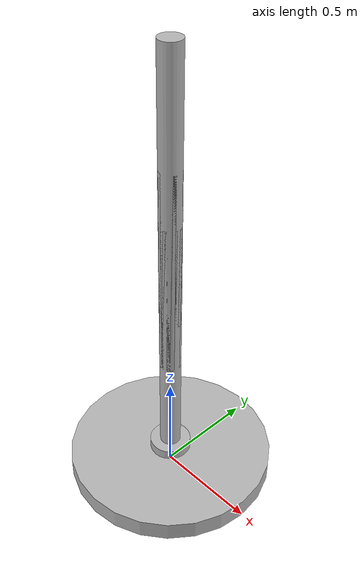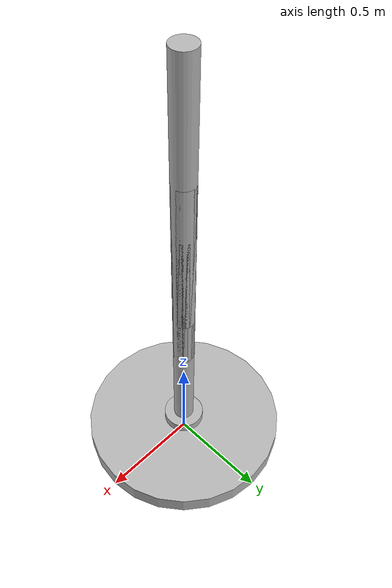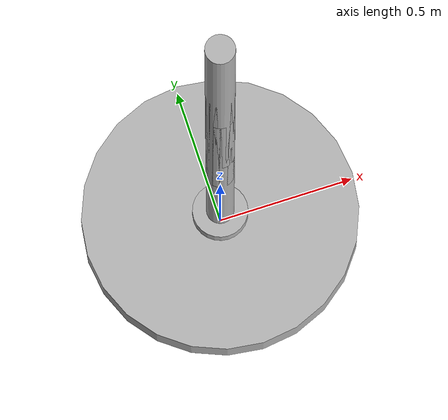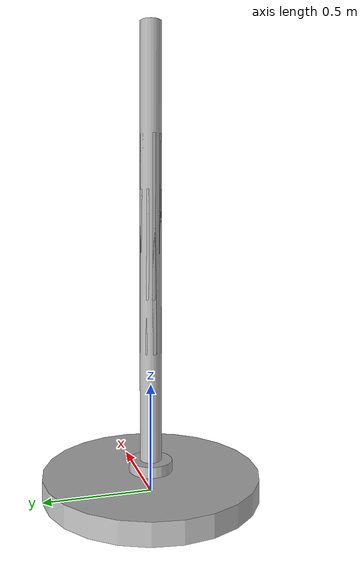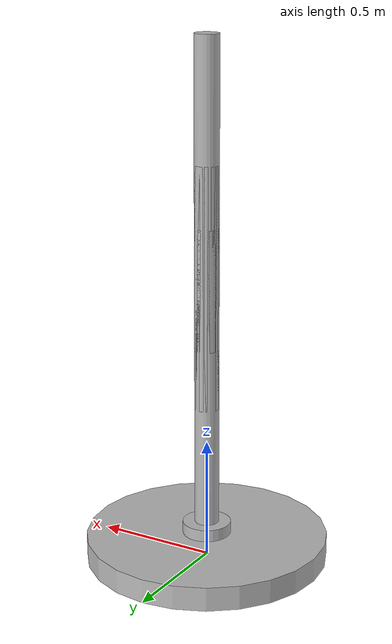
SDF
<?xml version='1.0'?>
<sdf version='1.4'>
  <model name="robotarm">
  <static>true</static>
   <link name='base'>
            <pose>0 0 0.05 0 0 0</pose>

            <collision name='collision'>
              <geometry>
                <cylinder>
                <radius>.5</radius>
                <length>.1</length>
              </cylinder>
              </geometry>
            </collision>

            <visual name='visual'>
              <geometry>
                <cylinder>
                <radius>.5</radius>
                <length>.1</length>
              </cylinder>
              </geometry>
            </visual>
          </link>

        <link name='arm1'>
            <pose>0 0 0.125 0 0 0</pose>

            <collision name='collision'>
              <geometry>
               <cylinder>
                <radius>.1</radius>
                <length>.05</length>
              </cylinder>
              </geometry>
            </collision>

            <visual name='visual'>
              <geometry>
                <cylinder>
                <radius>.1</radius>
                <length>.05</length>
              </cylinder>
              </geometry>
            </visual>
          </link>
          <link name='arm2'>
            <pose>0 0 1.15 0 0 0</pose>

            <collision name='collision'>
              <geometry>
               <cylinder>
                <radius>0.05</radius>
                <length>2</length>
              </cylinder>
              </geometry>
            </collision>

            <visual name='visual'>
              <geometry>
                <cylinder>
                <radius>.05</radius>
                <length>2</length>
              </cylinder>
              </geometry>
            </visual>
          </link>

           <link name='arm3'>
            <pose>0 0 1.15 0 0 0</pose>

            <collision name='collision'>
              <geometry>
               <cylinder>
               <radius>.05</radius>
                <length>1</length>
              </cylinder>
              </geometry>
            </collision>

            <visual name='visual'>
              <geometry>
                <cylinder>
                <radius>.05</radius>
                <length>1</length>
              </cylinder>
              </geometry>
            </visual>
          </link>

           <link name='arm4'>
            <pose>0 0 1.15 0 0 0</pose>

            <collision name='collision'>
              <geometry>
               <cylinder>
               <radius>.05</radius>
                <length>0.5</length>
              </cylinder>
              </geometry>
            </collision>

            <visual name='visual'>
              <geometry>
                <cylinder>
             <radius>.05</radius>
                <length>0.5</length>
              </cylinder>
              </geometry>
            </visual>
          </link>

        <joint name="base_arm1_joint" type="revolute">
            <parent>base</parent>
            <child>arm1</child>
            <pose>0 0 -0.025 0 0 0</pose>
            <axis>
                <xyz>0 0 1</xyz>
            </axis>
        </joint>
        <joint name="arm1_arm2_joint" type="revolute">
            <parent>arm1</parent>
            <child>arm2</child>
            <pose>0 0 -1.0 0 0 0</pose>
            <axis>
                <xyz>1 0 0</xyz>
            </axis>
        </joint>

         <joint name="arm2_arm3_joint" type="revolute">
            <parent>arm1</parent>
            <child>arm2</child>
            <pose>0 0 -1.0 0 0 0</pose>
            <axis>
                <xyz>1 0 0</xyz>
            </axis>
        </joint>

         <joint name="arm3_arm4_joint" type="revolute">
            <parent>arm1</parent>
            <child>arm2</child>
            <pose>0 0 -1.0 0 0 0</pose>
            <axis>
                <xyz>1 0 0</xyz>
            </axis>
        </joint>
  </model>
</sdf>
